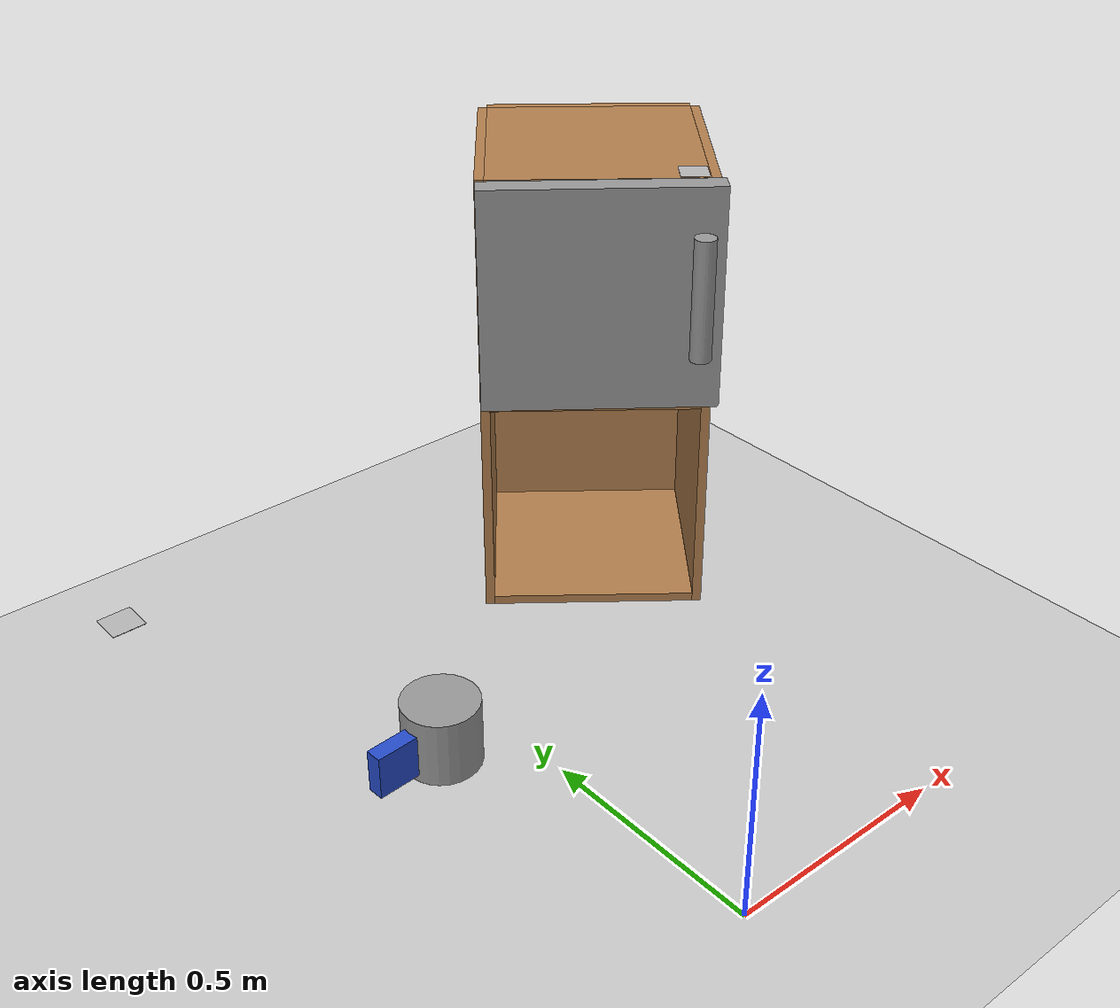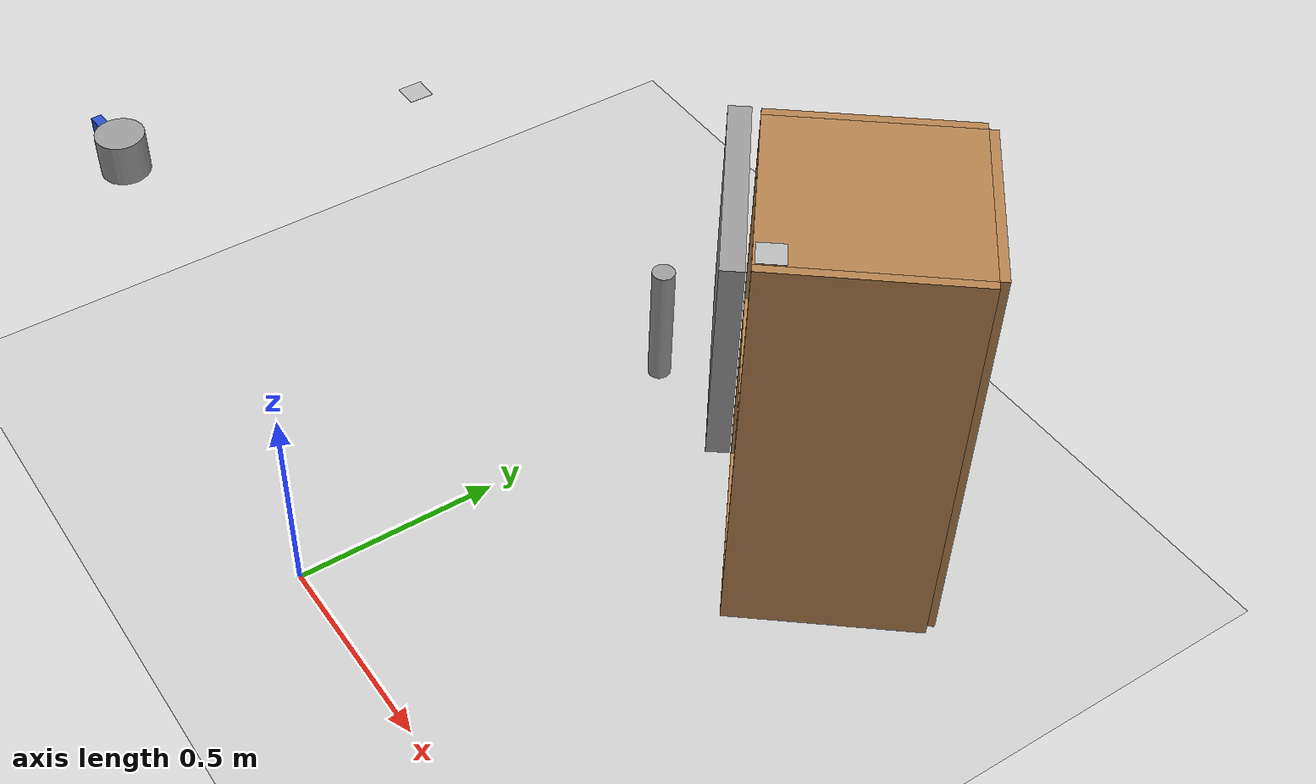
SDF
<sdf version="1.7">
 <world name="default">
  <plugin name="ros_link_attacher_plugin" filename="libgazebo_ros_link_attacher.so"/>
  <light name="sun" type="directional">
   <pose>0 0 10 0 -0 0</pose>
   <diffuse>0.8 0.8 0.8 1</diffuse>
   <specular>0.2 0.2 0.2 1</specular>
   <attenuation>
    <range>1000</range>
    <constant>0.9</constant>
    <linear>0.01</linear>
    <quadratic>0.001</quadratic>
   </attenuation>
   <direction>-0.5 0.1 -0.9</direction>
   <spot><inner_angle>0</inner_angle><outer_angle>0</outer_angle><falloff>0</falloff></spot>
  </light>
  <model name="ground_plane">
   <static>1</static>
   <link name="link">
    <collision name="collision">
     <geometry><plane><normal>0 0 1</normal><size>100 100</size></plane></geometry>
     <surface>
      <contact><collide_bitmask>65535</collide_bitmask></contact>
      <friction><ode><mu>100</mu><mu2>50</mu2></ode></friction>
     </surface>
    </collision>
    <visual name="visual">
     <cast_shadows>0</cast_shadows>
     <geometry><plane><normal>0 0 1</normal><size>100 100</size></plane></geometry>
     <material>
      <script><uri>file://media/materials/scripts/gazebo.material</uri><name>Gazebo/Grey</name></script>
     </material>
    </visual>
   </link>
  </model>
  <gravity>0 0 -9.8</gravity>
  <magnetic_field>6e-06 2.3e-05 -4.2e-05</magnetic_field>
  <atmosphere type="adiabatic"/>
  <physics type="ode">
   <max_step_size>0.001</max_step_size>
   <real_time_factor>1</real_time_factor>
   <real_time_update_rate>1000</real_time_update_rate>
  </physics>
  <scene><ambient>0.4 0.4 0.4 1</ambient><background>0.7 0.7 0.7 1</background><shadows>1</shadows></scene>
  <spherical_coordinates>
   <surface_model>EARTH_WGS84</surface_model>
   <latitude_deg>0</latitude_deg>
   <longitude_deg>0</longitude_deg>
   <elevation>0</elevation>
   <heading_deg>0</heading_deg>
  </spherical_coordinates>
  <model name="Cabinet">
   <link name="link_1">
    <inertial>
     <mass>0.0117628</mass>
     <inertia>
      <ixx>0.00047208</ixx>
      <ixy>0</ixy>
      <ixz>0</ixz>
      <iyy>0.000233782</iyy>
      <iyz>0</iyz>
      <izz>0.000242892</izz>
     </inertia>
    </inertial>
    <pose>-0.080444 1.09691 0.789345 0 -0 0.910773</pose>
    <visual name="visual">
     <geometry><box><size>0.048406 0.495426 0.485956</size></box></geometry>
     <material>
      <lighting>1</lighting>
      <script><uri>file://media/materials/scripts/gazebo.material</uri><name>Gazebo/Grey</name></script>
      <shader type="pixel"/>
      <emissive>0 0 0 1</emissive>
     </material>
    </visual>
    <collision name="collision">
     <geometry><box><size>0.048406 0.495426 0.485956</size></box></geometry>
     <surface>
      <friction>
       <ode><mu>1</mu><mu2>1</mu2><fdir1>0 0 0</fdir1><slip1>0</slip1><slip2>0</slip2></ode>
       <torsional>
        <coefficient>1</coefficient>
        <patch_radius>0</patch_radius>
        <surface_radius>0</surface_radius>
        <use_patch_radius>1</use_patch_radius>
        <ode><slip>0</slip></ode>
       </torsional>
      </friction>
      <bounce><restitution_coefficient>0</restitution_coefficient><threshold>1e+06</threshold></bounce>
      <contact>
       <collide_without_contact>0</collide_without_contact>
       <collide_without_contact_bitmask>1</collide_without_contact_bitmask>
       <collide_bitmask>1</collide_bitmask>
       <ode>
        <soft_cfm>0</soft_cfm>
        <soft_erp>0.2</soft_erp>
        <kp>1e+13</kp>
        <kd>1</kd>
        <max_vel>0.01</max_vel>
        <min_depth>0</min_depth>
       </ode>
       <bullet>
        <split_impulse>1</split_impulse>
        <split_impulse_penetration_threshold>-0.01</split_impulse_penetration_threshold>
        <soft_cfm>0</soft_cfm>
        <soft_erp>0.2</soft_erp>
        <kp>1e+13</kp>
        <kd>1</kd>
       </bullet>
      </contact>
     </surface>
    </collision>
   </link>
   <link name="link_2">
    <inertial>
     <mass>0.000520077</mass>
     <inertia>
      <ixx>2.98392e-06</ixx>
      <ixy>0</ixy>
      <ixz>0</ixz>
      <iyy>2.98392e-06</iyy>
      <iyz>0</iyz>
      <izz>1.30256e-07</izz>
     </inertia>
    </inertial>
    <pose>-0.006569 0.88102 0.839102 0 -0 0.860373</pose>
    <visual name="visual">
     <geometry><cylinder><radius>0.022381</radius><length>0.259512</length></cylinder></geometry>
     <material>
      <lighting>1</lighting>
      <script><uri>file://media/materials/scripts/gazebo.material</uri><name>Gazebo/Grey</name></script>
      <shader type="pixel"/>
      <emissive>0 0 0 1</emissive>
     </material>
    </visual>
    <collision name="collision">
     <geometry><cylinder><radius>0.022381</radius><length>0.259512</length></cylinder></geometry>
     <surface>
      <friction>
       <ode><mu>1</mu><mu2>1</mu2><fdir1>0 0 0</fdir1><slip1>0</slip1><slip2>0</slip2></ode>
       <torsional>
        <coefficient>1</coefficient>
        <patch_radius>0</patch_radius>
        <surface_radius>0</surface_radius>
        <use_patch_radius>1</use_patch_radius>
        <ode><slip>0</slip></ode>
       </torsional>
      </friction>
      <bounce><restitution_coefficient>0</restitution_coefficient><threshold>1e+06</threshold></bounce>
      <contact>
       <collide_without_contact>0</collide_without_contact>
       <collide_without_contact_bitmask>1</collide_without_contact_bitmask>
       <collide_bitmask>1</collide_bitmask>
       <ode>
        <soft_cfm>0</soft_cfm>
        <soft_erp>0.2</soft_erp>
        <kp>1e+13</kp>
        <kd>1</kd>
        <max_vel>0.01</max_vel>
        <min_depth>0</min_depth>
       </ode>
       <bullet>
        <split_impulse>1</split_impulse>
        <split_impulse_penetration_threshold>-0.01</split_impulse_penetration_threshold>
        <soft_cfm>0</soft_cfm>
        <soft_erp>0.2</soft_erp>
        <kp>1e+13</kp>
        <kd>1</kd>
       </bullet>
      </contact>
     </surface>
    </collision>
   </link>
   <model name="cabinet">
    <static>1</static>
    <link name="cabinet_bottom_plate">
     <inertial>
      <pose>0 0 -1 0 -0 0</pose>
      <inertia><ixx>2.05</ixx><ixy>0</ixy><ixz>0</ixz><iyy>2.05</iyy><iyz>0</iyz><izz>2.05</izz></inertia>
      <mass>25</mass>
     </inertial>
     <collision name="cabinet_bottom_plate_geom">
      <pose>0 0 0.01 0 -0 0</pose>
      <geometry><box><size>0.45 0.45 0.02</size></box></geometry>
     </collision>
     <visual name="cabinet_bottom_plate_geom_visual">
      <pose>0 0 0.01 0 -0 0</pose>
      <geometry><box><size>0.45 0.45 0.02</size></box></geometry>
      <material>
       <script><uri>file://media/materials/scripts/gazebo.material</uri><name>Gazebo/Wood</name></script>
      </material>
     </visual>
     <collision name="cabinet_bottom_plate_geom_cabinet_back_plate">
      <pose>0.235 0 0.51 0 -0 0</pose>
      <geometry><box><size>0.02 0.45 1.02</size></box></geometry>
     </collision>
     <visual name="cabinet_bottom_plate_geom_cabinet_back_plate_visual">
      <pose>0.235 0 0.51 0 -0 0</pose>
      <geometry><box><size>0.02 0.45 1.02</size></box></geometry>
      <material>
       <script><uri>file://media/materials/scripts/gazebo.material</uri><name>Gazebo/Wood</name></script>
      </material>
     </visual>
     <collision name="cabinet_bottom_plate_geom_cabinet_left_plate">
      <pose>0 0.235 0.51 0 -0 0</pose>
      <geometry><box><size>0.45 0.02 1.02</size></box></geometry>
     </collision>
     <visual name="cabinet_bottom_plate_geom_cabinet_left_plate_visual">
      <pose>0 0.235 0.51 0 -0 0</pose>
      <geometry><box><size>0.45 0.02 1.02</size></box></geometry>
      <material>
       <script><uri>file://media/materials/scripts/gazebo.material</uri><name>Gazebo/Wood</name></script>
      </material>
     </visual>
     <collision name="cabinet_bottom_plate_geom_cabinet_middle_plate">
      <pose>0 0 0.51 0 -0 0</pose>
      <geometry><box><size>0.45 0.45 0.02</size></box></geometry>
     </collision>
     <visual name="cabinet_bottom_plate_geom_cabinet_middle_plate_visual">
      <pose>0 0 0.51 0 -0 0</pose>
      <geometry><box><size>0.45 0.45 0.02</size></box></geometry>
      <material>
       <script><uri>file://media/materials/scripts/gazebo.material</uri><name>Gazebo/Wood</name></script>
      </material>
     </visual>
     <collision name="cabinet_bottom_plate_geom_cabinet_right_plate">
      <pose>0 -0.235 0.51 0 -0 0</pose>
      <geometry><box><size>0.45 0.02 1.02</size></box></geometry>
     </collision>
     <visual name="cabinet_bottom_plate_geom_cabinet_right_plate_visual">
      <pose>0 -0.235 0.51 0 -0 0</pose>
      <geometry><box><size>0.45 0.02 1.02</size></box></geometry>
      <material>
       <script><uri>file://media/materials/scripts/gazebo.material</uri><name>Gazebo/Wood</name></script>
      </material>
     </visual>
     <collision name="cabinet_bottom_plate_geom_cabinet_top_plate">
      <pose>0 0 1.01 0 -0 0</pose>
      <geometry><box><size>0.45 0.45 0.02</size></box></geometry>
     </collision>
     <visual name="cabinet_bottom_plate_geom_cabinet_top_plate_visual">
      <pose>0 0 1.01 0 -0 0</pose>
      <geometry><box><size>0.45 0.45 0.02</size></box></geometry>
      <material>
       <script><uri>file://media/materials/scripts/gazebo.material</uri><name>Gazebo/Wood</name></script>
      </material>
     </visual>
    </link>
    <pose>0.080286 1.30641 0.008098 0 -0 0.89481</pose>
   </model>
   <joint name="Handle_link" type="fixed">
    <parent>link_1</parent>
    <child>link_2</child>
    <physics>
     <ode><limit><cfm>0</cfm><erp>0.2</erp></limit><suspension><cfm>0</cfm><erp>0.2</erp></suspension></ode>
    </physics>
   </joint>
   <joint name="cabinet_bottom_plate_JOINT_1" type="revolute">
    <parent>cabinet::cabinet_bottom_plate</parent>
    <child>link_1</child>
    <pose>0 0.26 0 0 -0 0</pose>
    <axis>
     <xyz>0 0 1</xyz>
     <limit>
      <lower>-1.79769e+308</lower>
      <upper>1.79769e+308</upper>
      <effort>-1</effort>
      <velocity>-1</velocity>
     </limit>
     <dynamics>
      <spring_reference>0</spring_reference>
      <spring_stiffness>0</spring_stiffness>
      <damping>0</damping>
      <friction>0</friction>
     </dynamics>
    </axis>
    <physics>
     <ode><limit><cfm>0</cfm><erp>0.2</erp></limit><suspension><cfm>0</cfm><erp>0.2</erp></suspension></ode>
    </physics>
   </joint>
   <static>0</static>
   <pose>0.471763 -0.253943 -0 0 -0 -0.004313</pose>
  </model>
  <model name="aruco_marker_6cm_26">
   <static>0</static>
   <link name="marker">
    <inertial>
     <mass>0.1</mass>
     <inertia><ixx>0</ixx><ixy>0</ixy><ixz>0</ixz><iyy>0</iyy><iyz>0</iyz><izz>0</izz></inertia>
    </inertial>
    <visual name="visual">
     <pose>0 0 0 0 -0 1.57</pose>
     <geometry><box><size>0.06 0.06 0.001</size></box></geometry>
     <material>
      <script>
       <uri>model://aruco_marker_6cm_26/material/scripts</uri>
       <uri>model://aruco_marker_6cm_26/material/textures</uri>
       <name>Aruco/aruco_marker_6cm_26</name>
      </script>
     </material>
    </visual>
    <collision name="collision"><geometry><box><size>0.06 0.06 0.001</size></box></geometry></collision>
    <self_collide>1</self_collide>
   </link>
   <pose>0.588332 0.782902 1.0286 3.5e-05 -2.6e-05 -0.670917</pose>
  </model>
  <model name="aruco_marker_6cm_63">
   <static>0</static>
   <link name="marker">
    <inertial>
     <mass>0.1</mass>
     <inertia><ixx>0</ixx><ixy>0</ixy><ixz>0</ixz><iyy>0</iyy><iyz>0</iyz><izz>0</izz></inertia>
    </inertial>
    <visual name="visual">
     <pose>0 0 0 0 -0 1.57</pose>
     <geometry><box><size>0.06 0.06 0.001</size></box></geometry>
     <material>
      <script>
       <uri>model://aruco_marker_6cm_63/material/scripts</uri>
       <uri>model://aruco_marker_6cm_63/material/textures</uri>
       <name>Aruco/aruco_marker_6cm_63</name>
      </script>
     </material>
    </visual>
    <collision name="collision"><geometry><box><size>0.06 0.06 0.001</size></box></geometry></collision>
    <self_collide>1</self_collide>
    <gravity>0</gravity>
   </link>
   <pose>-0.736926 0.754209 0.575569 -0.004806 -0.003706 2.6e-05</pose>
  </model>
  <model name="Dummy_Cup">
   <link name="link_0">
    <inertial>
     <mass>0.00112636</mass>
     <inertia>
      <ixx>1.68e-06</ixx>
      <ixy>0</ixy>
      <ixz>0</ixz>
      <iyy>1.68e-06</iyy>
      <iyz>0</iyz>
      <izz>1.63e-06</izz>
     </inertia>
    </inertial>
    <pose>0.041141 0.001499 0.003054 0 -0 0</pose>
    <visual name="visual">
     <geometry><cylinder><radius>0.0538069</radius><length>0.0962044</length></cylinder></geometry>
     <material>
      <lighting>1</lighting>
      <script><uri>file://media/materials/scripts/gazebo.material</uri><name>Gazebo/Grey</name></script>
      <shader type="pixel"><normal_map>__default__</normal_map></shader>
      <emissive>0 0 0 1</emissive>
     </material>
    </visual>
    <collision name="collision">
     <geometry><cylinder><radius>0.053807</radius><length>0.096204</length></cylinder></geometry>
     <surface>
      <friction>
       <ode><mu>3000</mu><mu2>3000</mu2><slip1>0</slip1><slip2>0</slip2></ode>
       <torsional>
        <coefficient>1</coefficient>
        <patch_radius>0</patch_radius>
        <surface_radius>0</surface_radius>
        <use_patch_radius>1</use_patch_radius>
        <ode><slip>0</slip></ode>
       </torsional>
      </friction>
      <bounce><restitution_coefficient>0</restitution_coefficient><threshold>1e+06</threshold></bounce>
      <contact>
       <collide_without_contact>0</collide_without_contact>
       <collide_without_contact_bitmask>1</collide_without_contact_bitmask>
       <collide_bitmask>1</collide_bitmask>
       <ode>
        <soft_cfm>0.04</soft_cfm>
        <soft_erp>0.2</soft_erp>
        <kp>1e+13</kp>
        <kd>1</kd>
        <max_vel>0.01</max_vel>
        <min_depth>0</min_depth>
       </ode>
       <bullet>
        <split_impulse>1</split_impulse>
        <split_impulse_penetration_threshold>-0.01</split_impulse_penetration_threshold>
        <soft_cfm>0.04</soft_cfm>
        <soft_erp>0.2</soft_erp>
        <kp>1e+13</kp>
        <kd>1</kd>
       </bullet>
      </contact>
     </surface>
    </collision>
   </link>
   <link name="link_1">
    <inertial>
     <mass>9.0834e-05</mass>
     <inertia>
      <ixx>3.3952e-08</ixx>
      <ixy>0</ixy>
      <ixz>0</ixz>
      <iyy>5.86799e-08</iyy>
      <iyz>0</iyz>
      <izz>3.30224e-08</izz>
     </inertia>
    </inertial>
    <pose>-0.041142 -0.001498 -0.003054 0 -0 0</pose>
    <visual name="visual">
     <geometry><box><size>0.061763 0.023407 0.062749</size></box></geometry>
     <material>
      <lighting>1</lighting>
      <script><uri>file://media/materials/scripts/gazebo.material</uri><name>Gazebo/Blue</name></script>
      <shader type="pixel"/>
      <emissive>0 0 0 1</emissive>
     </material>
    </visual>
    <collision name="collision">
     <geometry><box><size>0.061763 0.023407 0.062749</size></box></geometry>
     <surface>
      <friction>
       <ode><mu>1000</mu><mu2>1000</mu2><slip1>0</slip1><slip2>0</slip2></ode>
       <torsional>
        <coefficient>1</coefficient>
        <patch_radius>0</patch_radius>
        <surface_radius>0</surface_radius>
        <use_patch_radius>1</use_patch_radius>
        <ode><slip>0</slip></ode>
       </torsional>
      </friction>
      <bounce><restitution_coefficient>0</restitution_coefficient><threshold>1e+06</threshold></bounce>
      <contact>
       <collide_without_contact>0</collide_without_contact>
       <collide_without_contact_bitmask>1</collide_without_contact_bitmask>
       <collide_bitmask>1</collide_bitmask>
       <ode>
        <soft_cfm>0</soft_cfm>
        <soft_erp>0.2</soft_erp>
        <kp>1e+13</kp>
        <kd>1</kd>
        <max_vel>0.01</max_vel>
        <min_depth>0</min_depth>
       </ode>
       <bullet>
        <split_impulse>1</split_impulse>
        <split_impulse_penetration_threshold>-0.01</split_impulse_penetration_threshold>
        <soft_cfm>0</soft_cfm>
        <soft_erp>0.2</soft_erp>
        <kp>1e+13</kp>
        <kd>1</kd>
       </bullet>
      </contact>
     </surface>
    </collision>
   </link>
   <joint name="link_0_JOINT_0" type="fixed">
    <parent>link_0</parent>
    <child>link_1</child>
    <physics>
     <ode><limit><cfm>0</cfm><erp>0.2</erp></limit><suspension><cfm>0</cfm><erp>0.2</erp></suspension></ode>
    </physics>
   </joint>
   <joint name="joint_CC" type="fixed">
    <parent>link_00</parent>
    <child>model_01::link_01</child>
    <axis><xyz>1 0 0</xyz><limit><lower>-1e+16</lower><upper>1e+16</upper></limit></axis>
   </joint>
   <static>0</static>
   <pose>-0.681405 -0.013618 0.784699 -5e-06 -8e-06 0.059336</pose>
  </model>
 </world>
</sdf>
